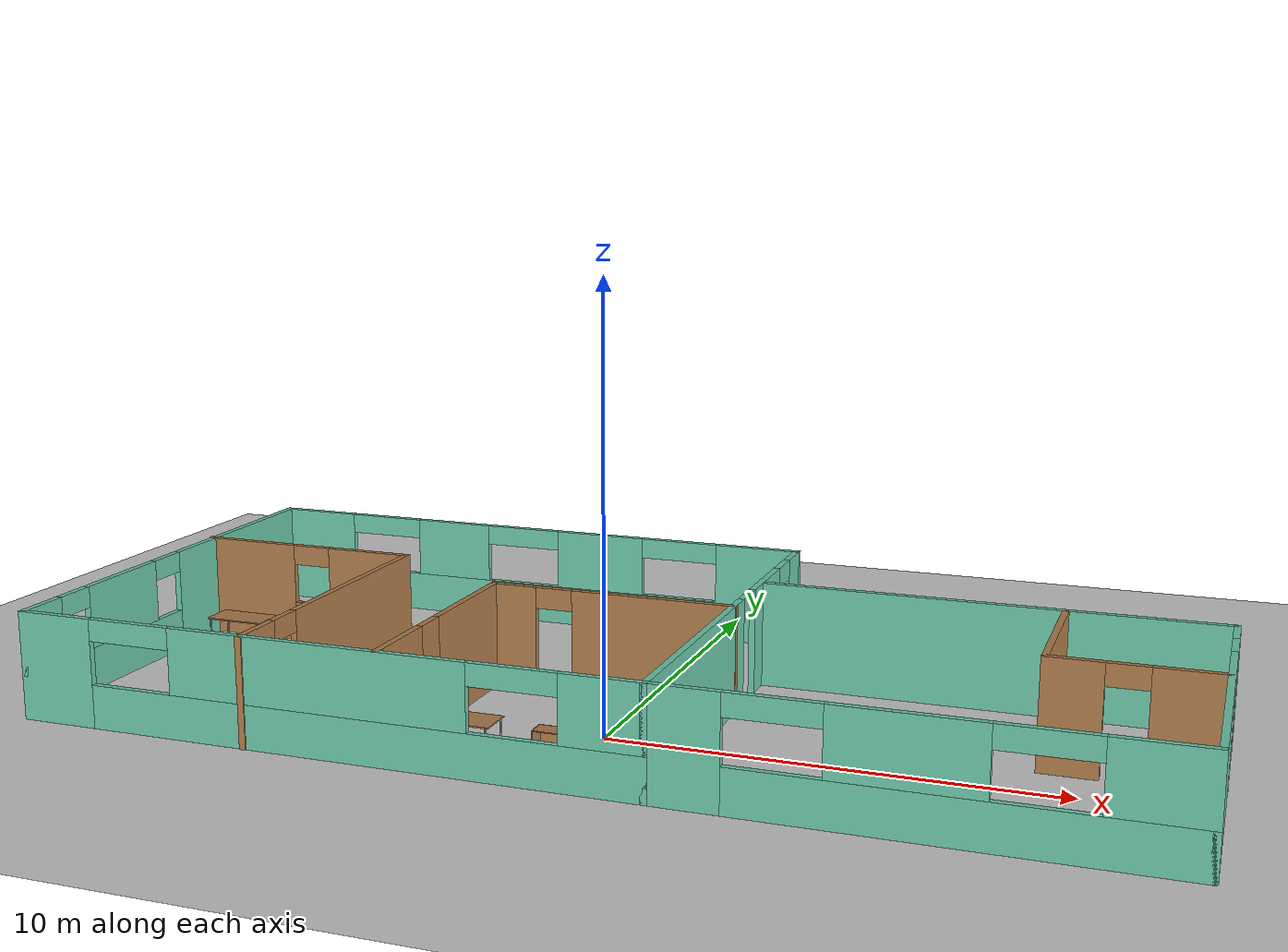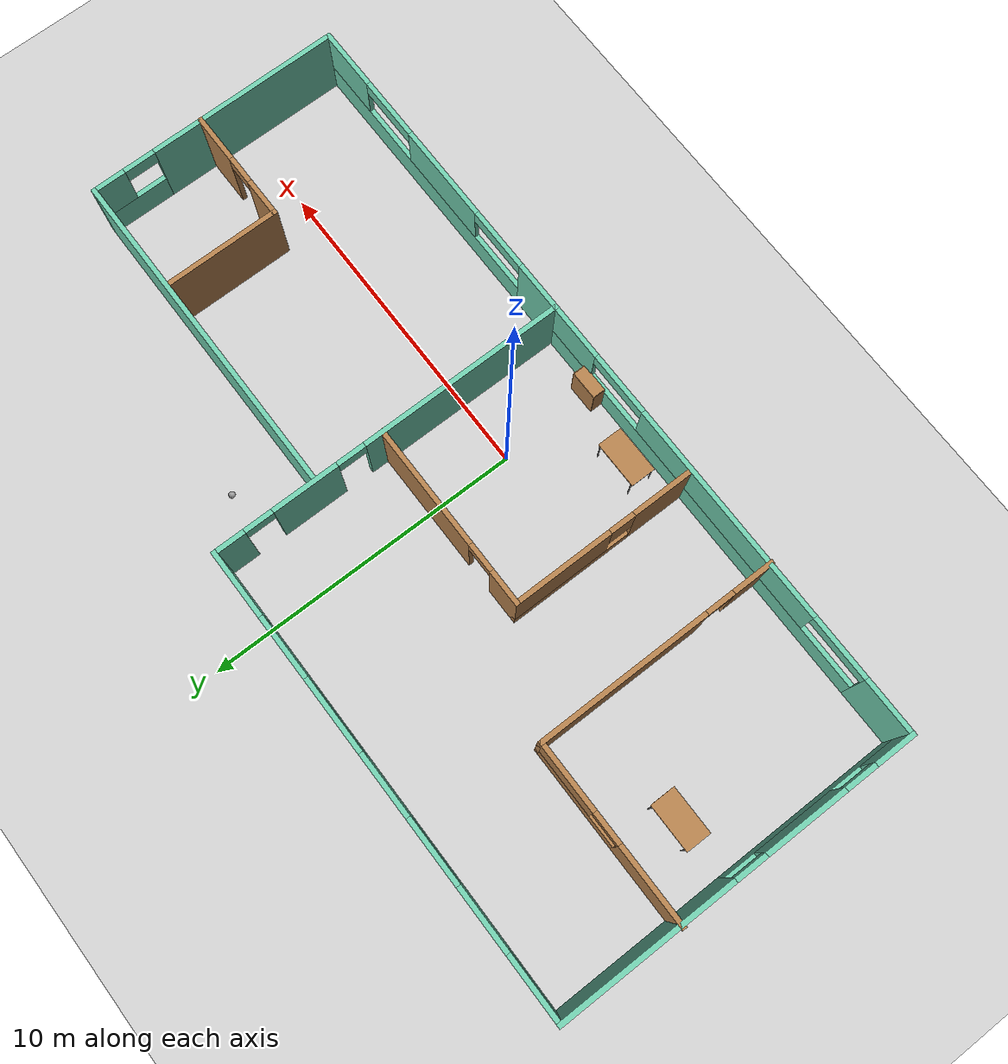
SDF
<sdf version="1.6">
 <world name="default">
  <model name="ground_plane">
   <static>1</static>
   <link name="link">
    <collision name="collision">
     <geometry><plane><normal>0 0 1</normal><size>100 100</size></plane></geometry>
     <surface><friction><ode><mu>100</mu><mu2>50</mu2></ode></friction></surface>
    </collision>
    <visual name="visual">
     <cast_shadows>0</cast_shadows>
     <geometry><plane><normal>0 0 1</normal><size>100 100</size></plane></geometry>
     <material>
      <script><uri>file://media/materials/scripts/gazebo.material</uri><name>Gazebo/Grey</name></script>
     </material>
    </visual>
   </link>
  </model>
  <model name="Building">
   <pose>0.0487 2.43488 0 0 -0 0</pose>
   <link name="Wall_16">
    <pose>-3.82517 -2.7038 0 0 -0 1.5708</pose>
    <visual name="Wall_16_Visual_0">
     <pose>-1.99039 0 1.25 0 -0 0</pose>
     <geometry><box><size>2.01921 0.15 2.5</size></box></geometry>
     <material>
      <script><uri>file://media/materials/scripts/gazebo.material</uri><name>Gazebo/Wood</name></script>
      <ambient>1 1 1 1</ambient>
     </material>
     <meta><layer>0</layer></meta>
    </visual>
    <collision name="Wall_16_Collision_0">
     <geometry><box><size>2.01921 0.15 2.5</size></box></geometry>
     <pose>-1.99039 0 1.25 0 -0 0</pose>
    </collision>
    <visual name="Wall_16_Visual_1">
     <pose>1.00961 0 0.25 0 -0 0</pose>
     <geometry><box><size>3.98079 0.15 0.5</size></box></geometry>
     <material>
      <script><uri>file://media/materials/scripts/gazebo.material</uri><name>Gazebo/Wood</name></script>
      <ambient>1 1 1 1</ambient>
     </material>
     <meta><layer>0</layer></meta>
    </visual>
    <collision name="Wall_16_Collision_1">
     <geometry><box><size>3.98079 0.15 0.5</size></box></geometry>
     <pose>1.00961 0 0.25 0 -0 0</pose>
    </collision>
    <visual name="Wall_16_Visual_2">
     <pose>1.4096 0 1.5 0 -0 0</pose>
     <geometry><box><size>3.18079 0.15 2</size></box></geometry>
     <material>
      <script><uri>file://media/materials/scripts/gazebo.material</uri><name>Gazebo/Wood</name></script>
      <ambient>1 1 1 1</ambient>
     </material>
     <meta><layer>0</layer></meta>
    </visual>
    <collision name="Wall_16_Collision_2">
     <geometry><box><size>3.18079 0.15 2</size></box></geometry>
     <pose>1.4096 0 1.5 0 -0 0</pose>
    </collision>
    <visual name="Wall_16_Visual_3">
     <pose>-0.580791 0 1.9 0 -0 0</pose>
     <geometry><box><size>0.8 0.15 1.2</size></box></geometry>
     <material>
      <script><uri>file://media/materials/scripts/gazebo.material</uri><name>Gazebo/Wood</name></script>
      <ambient>1 1 1 1</ambient>
     </material>
     <meta><layer>0</layer></meta>
    </visual>
    <collision name="Wall_16_Collision_3">
     <geometry><box><size>0.8 0.15 1.2</size></box></geometry>
     <pose>-0.580791 0 1.9 0 -0 0</pose>
    </collision>
   </link>
   <link name="Wall_17">
    <pose>-0.900166 0.221202 0 0 -0 0</pose>
    <visual name="Wall_17_Visual_0">
     <pose>-2.42762 0 1.25 0 -0 0</pose>
     <geometry><box><size>1.14476 0.15 2.5</size></box></geometry>
     <material>
      <script><uri>file://media/materials/scripts/gazebo.material</uri><name>Gazebo/Wood</name></script>
      <ambient>1 1 1 1</ambient>
     </material>
     <meta><layer>0</layer></meta>
    </visual>
    <collision name="Wall_17_Collision_0">
     <geometry><box><size>1.14476 0.15 2.5</size></box></geometry>
     <pose>-2.42762 0 1.25 0 -0 0</pose>
    </collision>
    <visual name="Wall_17_Visual_1">
     <pose>1.02238 0 1.25 0 -0 0</pose>
     <geometry><box><size>3.95524 0.15 2.5</size></box></geometry>
     <material>
      <script><uri>file://media/materials/scripts/gazebo.material</uri><name>Gazebo/Wood</name></script>
      <ambient>1 1 1 1</ambient>
     </material>
     <meta><layer>0</layer></meta>
    </visual>
    <collision name="Wall_17_Collision_1">
     <geometry><box><size>3.95524 0.15 2.5</size></box></geometry>
     <pose>1.02238 0 1.25 0 -0 0</pose>
    </collision>
    <visual name="Wall_17_Visual_2">
     <pose>-1.40524 0 2.25 0 -0 0</pose>
     <geometry><box><size>0.9 0.15 0.5</size></box></geometry>
     <material>
      <script><uri>file://media/materials/scripts/gazebo.material</uri><name>Gazebo/Wood</name></script>
      <ambient>1 1 1 1</ambient>
     </material>
     <meta><layer>0</layer></meta>
    </visual>
    <collision name="Wall_17_Collision_2">
     <geometry><box><size>0.9 0.15 0.5</size></box></geometry>
     <pose>-1.40524 0 2.25 0 -0 0</pose>
    </collision>
   </link>
   <link name="Wall_23">
    <pose>7.32067 -5.66058 0 0 -0 0</pose>
    <visual name="Wall_23_Visual_0">
     <pose>-4.56131 0 1.25 0 -0 0</pose>
     <geometry><box><size>1.62738 0.15 2.5</size></box></geometry>
     <material>
      <script><uri>file://media/materials/scripts/gazebo.material</uri><name>Gazebo/Grey</name></script>
      <ambient>0.435294 0.796078 0.67451 1</ambient>
     </material>
     <meta><layer>0</layer></meta>
    </visual>
    <collision name="Wall_23_Collision_0">
     <geometry><box><size>1.62738 0.15 2.5</size></box></geometry>
     <pose>-4.56131 0 1.25 0 -0 0</pose>
    </collision>
    <visual name="Wall_23_Visual_1">
     <pose>0.81369 0 0.5 0 -0 0</pose>
     <geometry><box><size>9.12262 0.15 1</size></box></geometry>
     <material>
      <script><uri>file://media/materials/scripts/gazebo.material</uri><name>Gazebo/Grey</name></script>
      <ambient>0.435294 0.796078 0.67451 1</ambient>
     </material>
     <meta><layer>0</layer></meta>
    </visual>
    <collision name="Wall_23_Collision_1">
     <geometry><box><size>9.12262 0.15 1</size></box></geometry>
     <pose>0.81369 0 0.5 0 -0 0</pose>
    </collision>
    <visual name="Wall_23_Visual_2">
     <pose>-0.193336 0 1.75 0 -0 0</pose>
     <geometry><box><size>3.10857 0.15 1.5</size></box></geometry>
     <material>
      <script><uri>file://media/materials/scripts/gazebo.material</uri><name>Gazebo/Grey</name></script>
      <ambient>0.435294 0.796078 0.67451 1</ambient>
     </material>
     <meta><layer>0</layer></meta>
    </visual>
    <collision name="Wall_23_Collision_2">
     <geometry><box><size>3.10857 0.15 1.5</size></box></geometry>
     <pose>-0.193336 0 1.75 0 -0 0</pose>
    </collision>
    <visual name="Wall_23_Visual_3">
     <pose>4.36797 0 1.75 0 -0 0</pose>
     <geometry><box><size>2.01405 0.15 1.5</size></box></geometry>
     <material>
      <script><uri>file://media/materials/scripts/gazebo.material</uri><name>Gazebo/Grey</name></script>
      <ambient>0.435294 0.796078 0.67451 1</ambient>
     </material>
     <meta><layer>0</layer></meta>
    </visual>
    <collision name="Wall_23_Collision_3">
     <geometry><box><size>2.01405 0.15 1.5</size></box></geometry>
     <pose>4.36797 0 1.75 0 -0 0</pose>
    </collision>
    <visual name="Wall_23_Visual_4">
     <pose>-2.74762 0 2.25 0 -0 0</pose>
     <geometry><box><size>2 0.15 0.5</size></box></geometry>
     <material>
      <script><uri>file://media/materials/scripts/gazebo.material</uri><name>Gazebo/Grey</name></script>
      <ambient>0.435294 0.796078 0.67451 1</ambient>
     </material>
     <meta><layer>0</layer></meta>
    </visual>
    <collision name="Wall_23_Collision_4">
     <geometry><box><size>2 0.15 0.5</size></box></geometry>
     <pose>-2.74762 0 2.25 0 -0 0</pose>
    </collision>
    <visual name="Wall_23_Visual_5">
     <pose>2.36095 0 2.25 0 -0 0</pose>
     <geometry><box><size>2 0.15 0.5</size></box></geometry>
     <material>
      <script><uri>file://media/materials/scripts/gazebo.material</uri><name>Gazebo/Grey</name></script>
      <ambient>0.435294 0.796078 0.67451 1</ambient>
     </material>
     <meta><layer>0</layer></meta>
    </visual>
    <collision name="Wall_23_Collision_5">
     <geometry><box><size>2 0.15 0.5</size></box></geometry>
     <pose>2.36095 0 2.25 0 -0 0</pose>
    </collision>
   </link>
   <link name="Wall_24">
    <pose>12.6207 -1.61058 0 0 -0 1.5708</pose>
    <visual name="Wall_24_Visual_0">
     <pose>-1.03878 0 1.25 0 -0 0</pose>
     <geometry><box><size>6.17244 0.15 2.5</size></box></geometry>
     <material>
      <script><uri>file://media/materials/scripts/gazebo.material</uri><name>Gazebo/Grey</name></script>
      <ambient>0.435294 0.796078 0.67451 1</ambient>
     </material>
     <meta><layer>0</layer></meta>
    </visual>
    <collision name="Wall_24_Collision_0">
     <geometry><box><size>6.17244 0.15 2.5</size></box></geometry>
     <pose>-1.03878 0 1.25 0 -0 0</pose>
    </collision>
    <visual name="Wall_24_Visual_1">
     <pose>3.08622 0 0.5 0 -0 0</pose>
     <geometry><box><size>2.07756 0.15 1</size></box></geometry>
     <material>
      <script><uri>file://media/materials/scripts/gazebo.material</uri><name>Gazebo/Grey</name></script>
      <ambient>0.435294 0.796078 0.67451 1</ambient>
     </material>
     <meta><layer>0</layer></meta>
    </visual>
    <collision name="Wall_24_Collision_1">
     <geometry><box><size>2.07756 0.15 1</size></box></geometry>
     <pose>3.08622 0 0.5 0 -0 0</pose>
    </collision>
    <visual name="Wall_24_Visual_2">
     <pose>3.58622 0 1.75 0 -0 0</pose>
     <geometry><box><size>1.07756 0.15 1.5</size></box></geometry>
     <material>
      <script><uri>file://media/materials/scripts/gazebo.material</uri><name>Gazebo/Grey</name></script>
      <ambient>0.435294 0.796078 0.67451 1</ambient>
     </material>
     <meta><layer>0</layer></meta>
    </visual>
    <collision name="Wall_24_Collision_2">
     <geometry><box><size>1.07756 0.15 1.5</size></box></geometry>
     <pose>3.58622 0 1.75 0 -0 0</pose>
    </collision>
    <visual name="Wall_24_Visual_3">
     <pose>2.54744 0 2.25 0 -0 0</pose>
     <geometry><box><size>1 0.15 0.5</size></box></geometry>
     <material>
      <script><uri>file://media/materials/scripts/gazebo.material</uri><name>Gazebo/Grey</name></script>
      <ambient>0.435294 0.796078 0.67451 1</ambient>
     </material>
     <meta><layer>0</layer></meta>
    </visual>
    <collision name="Wall_24_Collision_3">
     <geometry><box><size>1 0.15 0.5</size></box></geometry>
     <pose>2.54744 0 2.25 0 -0 0</pose>
    </collision>
   </link>
   <link name="Wall_25">
    <collision name="Wall_25_Collision">
     <geometry><box><size>10.75 0.15 2.5</size></box></geometry>
     <pose>0 0 1.25 0 -0 0</pose>
    </collision>
    <visual name="Wall_25_Visual">
     <pose>0 0 1.25 0 -0 0</pose>
     <geometry><box><size>10.75 0.15 2.5</size></box></geometry>
     <material>
      <script><uri>file://media/materials/scripts/gazebo.material</uri><name>Gazebo/Grey</name></script>
      <ambient>0.435294 0.796078 0.67451 1</ambient>
     </material>
     <meta><layer>0</layer></meta>
    </visual>
    <pose>7.32067 2.43942 0 0 -0 3.14159</pose>
   </link>
   <link name="Wall_27">
    <collision name="Wall_27_Collision">
     <geometry><box><size>3.75 0.15 2.5</size></box></geometry>
     <pose>0 0 1.25 0 -0 0</pose>
    </collision>
    <visual name="Wall_27_Visual">
     <pose>0 0 1.25 0 -0 0</pose>
     <geometry><box><size>3.75 0.15 2.5</size></box></geometry>
     <material>
      <script><uri>file://media/materials/scripts/gazebo.material</uri><name>Gazebo/Wood</name></script>
      <ambient>1 1 1 1</ambient>
     </material>
     <meta><layer>0</layer></meta>
    </visual>
    <pose>9.02628 0.615984 0 0 0 -1.5708</pose>
   </link>
   <link name="Wall_28">
    <pose>10.8263 -1.18402 0 0 -0 0</pose>
    <visual name="Wall_28_Visual_0">
     <pose>-1.23789 0 1.25 0 -0 0</pose>
     <geometry><box><size>1.27421 0.15 2.5</size></box></geometry>
     <material>
      <script><uri>file://media/materials/scripts/gazebo.material</uri><name>Gazebo/Wood</name></script>
      <ambient>1 1 1 1</ambient>
     </material>
     <meta><layer>0</layer></meta>
    </visual>
    <collision name="Wall_28_Collision_0">
     <geometry><box><size>1.27421 0.15 2.5</size></box></geometry>
     <pose>-1.23789 0 1.25 0 -0 0</pose>
    </collision>
    <visual name="Wall_28_Visual_1">
     <pose>1.08711 0 1.25 0 -0 0</pose>
     <geometry><box><size>1.57579 0.15 2.5</size></box></geometry>
     <material>
      <script><uri>file://media/materials/scripts/gazebo.material</uri><name>Gazebo/Wood</name></script>
      <ambient>1 1 1 1</ambient>
     </material>
     <meta><layer>0</layer></meta>
    </visual>
    <collision name="Wall_28_Collision_1">
     <geometry><box><size>1.57579 0.15 2.5</size></box></geometry>
     <pose>1.08711 0 1.25 0 -0 0</pose>
    </collision>
    <visual name="Wall_28_Visual_2">
     <pose>-0.150787 0 2.25 0 -0 0</pose>
     <geometry><box><size>0.9 0.15 0.5</size></box></geometry>
     <material>
      <script><uri>file://media/materials/scripts/gazebo.material</uri><name>Gazebo/Wood</name></script>
      <ambient>1 1 1 1</ambient>
     </material>
     <meta><layer>0</layer></meta>
    </visual>
    <collision name="Wall_28_Collision_2">
     <geometry><box><size>0.9 0.15 0.5</size></box></geometry>
     <pose>-0.150787 0 2.25 0 -0 0</pose>
    </collision>
   </link>
   <link name="Wall_30">
    <pose>-9.82628 1.91058 0 0 -0 0</pose>
    <visual name="Wall_30_Visual_0">
     <pose>-1.61536 0 1.25 0 -0 0</pose>
     <geometry><box><size>2.51928 0.15 2.5</size></box></geometry>
     <material>
      <script><uri>file://media/materials/scripts/gazebo.material</uri><name>Gazebo/Wood</name></script>
      <ambient>1 1 1 1</ambient>
     </material>
     <meta><layer>0</layer></meta>
    </visual>
    <collision name="Wall_30_Collision_0">
     <geometry><box><size>2.51928 0.15 2.5</size></box></geometry>
     <pose>-1.61536 0 1.25 0 -0 0</pose>
    </collision>
    <visual name="Wall_30_Visual_1">
     <pose>1.25964 0 0.5 0 -0 0</pose>
     <geometry><box><size>3.23072 0.15 1</size></box></geometry>
     <material>
      <script><uri>file://media/materials/scripts/gazebo.material</uri><name>Gazebo/Wood</name></script>
      <ambient>1 1 1 1</ambient>
     </material>
     <meta><layer>0</layer></meta>
    </visual>
    <collision name="Wall_30_Collision_1">
     <geometry><box><size>3.23072 0.15 1</size></box></geometry>
     <pose>1.25964 0 0.5 0 -0 0</pose>
    </collision>
    <visual name="Wall_30_Visual_2">
     <pose>1.75964 0 1.75 0 -0 0</pose>
     <geometry><box><size>2.23072 0.15 1.5</size></box></geometry>
     <material>
      <script><uri>file://media/materials/scripts/gazebo.material</uri><name>Gazebo/Wood</name></script>
      <ambient>1 1 1 1</ambient>
     </material>
     <meta><layer>0</layer></meta>
    </visual>
    <collision name="Wall_30_Collision_2">
     <geometry><box><size>2.23072 0.15 1.5</size></box></geometry>
     <pose>1.75964 0 1.75 0 -0 0</pose>
    </collision>
    <visual name="Wall_30_Visual_3">
     <pose>0.144283 0 2.25 0 -0 0</pose>
     <geometry><box><size>1 0.15 0.5</size></box></geometry>
     <material>
      <script><uri>file://media/materials/scripts/gazebo.material</uri><name>Gazebo/Wood</name></script>
      <ambient>1 1 1 1</ambient>
     </material>
     <meta><layer>0</layer></meta>
    </visual>
    <collision name="Wall_30_Collision_3">
     <geometry><box><size>1 0.15 0.5</size></box></geometry>
     <pose>0.144283 0 2.25 0 -0 0</pose>
    </collision>
   </link>
   <link name="Wall_33">
    <pose>-7.02628 -1.88942 0 0 0 -1.5708</pose>
    <visual name="Wall_33_Visual_0">
     <pose>-1.12318 0 1.25 0 -0 0</pose>
     <geometry><box><size>5.50364 0.15 2.5</size></box></geometry>
     <material>
      <script><uri>file://media/materials/scripts/gazebo.material</uri><name>Gazebo/Wood</name></script>
      <ambient>1 1 1 1</ambient>
     </material>
     <meta><layer>0</layer></meta>
    </visual>
    <collision name="Wall_33_Collision_0">
     <geometry><box><size>5.50364 0.15 2.5</size></box></geometry>
     <pose>-1.12318 0 1.25 0 -0 0</pose>
    </collision>
    <visual name="Wall_33_Visual_1">
     <pose>3.20182 0 1.25 0 -0 0</pose>
     <geometry><box><size>1.34636 0.15 2.5</size></box></geometry>
     <material>
      <script><uri>file://media/materials/scripts/gazebo.material</uri><name>Gazebo/Wood</name></script>
      <ambient>1 1 1 1</ambient>
     </material>
     <meta><layer>0</layer></meta>
    </visual>
    <collision name="Wall_33_Collision_1">
     <geometry><box><size>1.34636 0.15 2.5</size></box></geometry>
     <pose>3.20182 0 1.25 0 -0 0</pose>
    </collision>
    <visual name="Wall_33_Visual_2">
     <pose>2.07864 0 2.25 0 -0 0</pose>
     <geometry><box><size>0.9 0.15 0.5</size></box></geometry>
     <material>
      <script><uri>file://media/materials/scripts/gazebo.material</uri><name>Gazebo/Wood</name></script>
      <ambient>1 1 1 1</ambient>
     </material>
     <meta><layer>0</layer></meta>
    </visual>
    <collision name="Wall_33_Collision_2">
     <geometry><box><size>0.9 0.15 0.5</size></box></geometry>
     <pose>2.07864 0 2.25 0 -0 0</pose>
    </collision>
   </link>
   <link name="Wall_4">
    <pose>-12.5793 0.01442 0 0 0 -1.5708</pose>
    <visual name="Wall_4_Visual_0">
     <pose>-2.95936 0 1.25 0 -0 0</pose>
     <geometry><box><size>5.58129 0.15 2.5</size></box></geometry>
     <material>
      <script><uri>file://media/materials/scripts/gazebo.material</uri><name>Gazebo/Grey</name></script>
      <ambient>0.435294 0.796078 0.67451 1</ambient>
     </material>
     <meta><layer>0</layer></meta>
    </visual>
    <collision name="Wall_4_Collision_0">
     <geometry><box><size>5.58129 0.15 2.5</size></box></geometry>
     <pose>-2.95936 0 1.25 0 -0 0</pose>
    </collision>
    <visual name="Wall_4_Visual_1">
     <pose>2.79064 0 0.5 0 -0 0</pose>
     <geometry><box><size>5.91871 0.15 1</size></box></geometry>
     <material>
      <script><uri>file://media/materials/scripts/gazebo.material</uri><name>Gazebo/Grey</name></script>
      <ambient>0.435294 0.796078 0.67451 1</ambient>
     </material>
     <meta><layer>0</layer></meta>
    </visual>
    <collision name="Wall_4_Collision_1">
     <geometry><box><size>5.91871 0.15 1</size></box></geometry>
     <pose>2.79064 0 0.5 0 -0 0</pose>
    </collision>
    <visual name="Wall_4_Visual_2">
     <pose>2.13634 0 1.75 0 -0 0</pose>
     <geometry><box><size>2.61011 0.15 1.5</size></box></geometry>
     <material>
      <script><uri>file://media/materials/scripts/gazebo.material</uri><name>Gazebo/Grey</name></script>
      <ambient>0.435294 0.796078 0.67451 1</ambient>
     </material>
     <meta><layer>0</layer></meta>
    </visual>
    <collision name="Wall_4_Collision_2">
     <geometry><box><size>2.61011 0.15 1.5</size></box></geometry>
     <pose>2.13634 0 1.75 0 -0 0</pose>
    </collision>
    <visual name="Wall_4_Visual_3">
     <pose>5.0957 0 1.75 0 -0 0</pose>
     <geometry><box><size>1.3086 0.15 1.5</size></box></geometry>
     <material>
      <script><uri>file://media/materials/scripts/gazebo.material</uri><name>Gazebo/Grey</name></script>
      <ambient>0.435294 0.796078 0.67451 1</ambient>
     </material>
     <meta><layer>0</layer></meta>
    </visual>
    <collision name="Wall_4_Collision_3">
     <geometry><box><size>1.3086 0.15 1.5</size></box></geometry>
     <pose>5.0957 0 1.75 0 -0 0</pose>
    </collision>
    <visual name="Wall_4_Visual_4">
     <pose>0.331288 0 2.25 0 -0 0</pose>
     <geometry><box><size>1 0.15 0.5</size></box></geometry>
     <material>
      <script><uri>file://media/materials/scripts/gazebo.material</uri><name>Gazebo/Grey</name></script>
      <ambient>0.435294 0.796078 0.67451 1</ambient>
     </material>
     <meta><layer>0</layer></meta>
    </visual>
    <collision name="Wall_4_Collision_4">
     <geometry><box><size>1 0.15 0.5</size></box></geometry>
     <pose>0.331288 0 2.25 0 -0 0</pose>
    </collision>
    <visual name="Wall_4_Visual_5">
     <pose>3.9414 0 2.25 0 -0 0</pose>
     <geometry><box><size>1 0.15 0.5</size></box></geometry>
     <material>
      <script><uri>file://media/materials/scripts/gazebo.material</uri><name>Gazebo/Grey</name></script>
      <ambient>0.435294 0.796078 0.67451 1</ambient>
     </material>
     <meta><layer>0</layer></meta>
    </visual>
    <collision name="Wall_4_Collision_5">
     <geometry><box><size>1 0.15 0.5</size></box></geometry>
     <pose>3.9414 0 2.25 0 -0 0</pose>
    </collision>
   </link>
   <link name="Wall_5">
    <pose>-5.27933 -5.66058 0 0 -0 0</pose>
    <visual name="Wall_5_Visual_0">
     <pose>-6.45001 0 1.25 0 -0 0</pose>
     <geometry><box><size>1.84997 0.15 2.5</size></box></geometry>
     <material>
      <script><uri>file://media/materials/scripts/gazebo.material</uri><name>Gazebo/Grey</name></script>
      <ambient>0.435294 0.796078 0.67451 1</ambient>
     </material>
     <meta><layer>0</layer></meta>
    </visual>
    <collision name="Wall_5_Collision_0">
     <geometry><box><size>1.84997 0.15 2.5</size></box></geometry>
     <pose>-6.45001 0 1.25 0 -0 0</pose>
    </collision>
    <visual name="Wall_5_Visual_1">
     <pose>0.924986 0 0.5 0 -0 0</pose>
     <geometry><box><size>12.9 0.15 1</size></box></geometry>
     <material>
      <script><uri>file://media/materials/scripts/gazebo.material</uri><name>Gazebo/Grey</name></script>
      <ambient>0.435294 0.796078 0.67451 1</ambient>
     </material>
     <meta><layer>0</layer></meta>
    </visual>
    <collision name="Wall_5_Collision_1">
     <geometry><box><size>12.9 0.15 1</size></box></geometry>
     <pose>0.924986 0 0.5 0 -0 0</pose>
    </collision>
    <visual name="Wall_5_Visual_2">
     <pose>-0.012969 0 1.75 0 -0 0</pose>
     <geometry><box><size>7.02412 0.15 1.5</size></box></geometry>
     <material>
      <script><uri>file://media/materials/scripts/gazebo.material</uri><name>Gazebo/Grey</name></script>
      <ambient>0.435294 0.796078 0.67451 1</ambient>
     </material>
     <meta><layer>0</layer></meta>
    </visual>
    <collision name="Wall_5_Collision_2">
     <geometry><box><size>7.02412 0.15 1.5</size></box></geometry>
     <pose>-0.012969 0 1.75 0 -0 0</pose>
    </collision>
    <visual name="Wall_5_Visual_3">
     <pose>6.43705 0 1.75 0 -0 0</pose>
     <geometry><box><size>1.87591 0.15 1.5</size></box></geometry>
     <material>
      <script><uri>file://media/materials/scripts/gazebo.material</uri><name>Gazebo/Grey</name></script>
      <ambient>0.435294 0.796078 0.67451 1</ambient>
     </material>
     <meta><layer>0</layer></meta>
    </visual>
    <collision name="Wall_5_Collision_3">
     <geometry><box><size>1.87591 0.15 1.5</size></box></geometry>
     <pose>6.43705 0 1.75 0 -0 0</pose>
    </collision>
    <visual name="Wall_5_Visual_4">
     <pose>-4.52503 0 2.25 0 -0 0</pose>
     <geometry><box><size>2 0.15 0.5</size></box></geometry>
     <material>
      <script><uri>file://media/materials/scripts/gazebo.material</uri><name>Gazebo/Grey</name></script>
      <ambient>0.435294 0.796078 0.67451 1</ambient>
     </material>
     <meta><layer>0</layer></meta>
    </visual>
    <collision name="Wall_5_Collision_4">
     <geometry><box><size>2 0.15 0.5</size></box></geometry>
     <pose>-4.52503 0 2.25 0 -0 0</pose>
    </collision>
    <visual name="Wall_5_Visual_5">
     <pose>4.49909 0 2.25 0 -0 0</pose>
     <geometry><box><size>2 0.15 0.5</size></box></geometry>
     <material>
      <script><uri>file://media/materials/scripts/gazebo.material</uri><name>Gazebo/Grey</name></script>
      <ambient>0.435294 0.796078 0.67451 1</ambient>
     </material>
     <meta><layer>0</layer></meta>
    </visual>
    <collision name="Wall_5_Collision_5">
     <geometry><box><size>2 0.15 0.5</size></box></geometry>
     <pose>4.49909 0 2.25 0 -0 0</pose>
    </collision>
   </link>
   <link name="Wall_6">
    <pose>2.02067 0.01442 0 0 -0 1.5708</pose>
    <visual name="Wall_6_Visual_0">
     <pose>-2.47112 0 1.25 0 -0 0</pose>
     <geometry><box><size>6.55776 0.15 2.5</size></box></geometry>
     <material>
      <script><uri>file://media/materials/scripts/gazebo.material</uri><name>Gazebo/Grey</name></script>
      <ambient>0.435294 0.796078 0.67451 1</ambient>
     </material>
     <meta><layer>0</layer></meta>
    </visual>
    <collision name="Wall_6_Collision_0">
     <geometry><box><size>6.55776 0.15 2.5</size></box></geometry>
     <pose>-2.47112 0 1.25 0 -0 0</pose>
    </collision>
    <visual name="Wall_6_Visual_1">
     <pose>2.76067 0 1.25 0 -0 0</pose>
     <geometry><box><size>2.10582 0.15 2.5</size></box></geometry>
     <material>
      <script><uri>file://media/materials/scripts/gazebo.material</uri><name>Gazebo/Grey</name></script>
      <ambient>0.435294 0.796078 0.67451 1</ambient>
     </material>
     <meta><layer>0</layer></meta>
    </visual>
    <collision name="Wall_6_Collision_1">
     <geometry><box><size>2.10582 0.15 2.5</size></box></geometry>
     <pose>2.76067 0 1.25 0 -0 0</pose>
    </collision>
    <visual name="Wall_6_Visual_2">
     <pose>5.23179 0 1.25 0 -0 0</pose>
     <geometry><box><size>1.03642 0.15 2.5</size></box></geometry>
     <material>
      <script><uri>file://media/materials/scripts/gazebo.material</uri><name>Gazebo/Grey</name></script>
      <ambient>0.435294 0.796078 0.67451 1</ambient>
     </material>
     <meta><layer>0</layer></meta>
    </visual>
    <collision name="Wall_6_Collision_2">
     <geometry><box><size>1.03642 0.15 2.5</size></box></geometry>
     <pose>5.23179 0 1.25 0 -0 0</pose>
    </collision>
    <visual name="Wall_6_Visual_3">
     <pose>1.25776 0 2.25 0 -0 0</pose>
     <geometry><box><size>0.9 0.15 0.5</size></box></geometry>
     <material>
      <script><uri>file://media/materials/scripts/gazebo.material</uri><name>Gazebo/Grey</name></script>
      <ambient>0.435294 0.796078 0.67451 1</ambient>
     </material>
     <meta><layer>0</layer></meta>
    </visual>
    <collision name="Wall_6_Collision_3">
     <geometry><box><size>0.9 0.15 0.5</size></box></geometry>
     <pose>1.25776 0 2.25 0 -0 0</pose>
    </collision>
    <visual name="Wall_6_Visual_4">
     <pose>4.26358 0 2.25 0 -0 0</pose>
     <geometry><box><size>0.9 0.15 0.5</size></box></geometry>
     <material>
      <script><uri>file://media/materials/scripts/gazebo.material</uri><name>Gazebo/Grey</name></script>
      <ambient>0.435294 0.796078 0.67451 1</ambient>
     </material>
     <meta><layer>0</layer></meta>
    </visual>
    <collision name="Wall_6_Collision_4">
     <geometry><box><size>0.9 0.15 0.5</size></box></geometry>
     <pose>4.26358 0 2.25 0 -0 0</pose>
    </collision>
   </link>
   <link name="Wall_7">
    <pose>-5.27933 5.68942 0 0 -0 3.14159</pose>
    <visual name="Wall_7_Visual_0">
     <pose>-6.28409 0 1.25 0 -0 0</pose>
     <geometry><box><size>2.18181 0.15 2.5</size></box></geometry>
     <material>
      <script><uri>file://media/materials/scripts/gazebo.material</uri><name>Gazebo/Grey</name></script>
      <ambient>0.435294 0.796078 0.67451 1</ambient>
     </material>
     <meta><layer>0</layer></meta>
    </visual>
    <collision name="Wall_7_Collision_0">
     <geometry><box><size>2.18181 0.15 2.5</size></box></geometry>
     <pose>-6.28409 0 1.25 0 -0 0</pose>
    </collision>
    <visual name="Wall_7_Visual_1">
     <pose>1.09091 0 0.5 0 -0 0</pose>
     <geometry><box><size>12.5682 0.15 1</size></box></geometry>
     <material>
      <script><uri>file://media/materials/scripts/gazebo.material</uri><name>Gazebo/Grey</name></script>
      <ambient>0.435294 0.796078 0.67451 1</ambient>
     </material>
     <meta><layer>0</layer></meta>
    </visual>
    <collision name="Wall_7_Collision_1">
     <geometry><box><size>12.5682 0.15 1</size></box></geometry>
     <pose>1.09091 0 0.5 0 -0 0</pose>
    </collision>
    <visual name="Wall_7_Visual_2">
     <pose>-2.00599 0 1.75 0 -0 0</pose>
     <geometry><box><size>2.3744 0.15 1.5</size></box></geometry>
     <material>
      <script><uri>file://media/materials/scripts/gazebo.material</uri><name>Gazebo/Grey</name></script>
      <ambient>0.435294 0.796078 0.67451 1</ambient>
     </material>
     <meta><layer>0</layer></meta>
    </visual>
    <collision name="Wall_7_Collision_2">
     <geometry><box><size>2.3744 0.15 1.5</size></box></geometry>
     <pose>-2.00599 0 1.75 0 -0 0</pose>
    </collision>
    <visual name="Wall_7_Visual_3">
     <pose>2.21547 0 1.75 0 -0 0</pose>
     <geometry><box><size>2.0685 0.15 1.5</size></box></geometry>
     <material>
      <script><uri>file://media/materials/scripts/gazebo.material</uri><name>Gazebo/Grey</name></script>
      <ambient>0.435294 0.796078 0.67451 1</ambient>
     </material>
     <meta><layer>0</layer></meta>
    </visual>
    <collision name="Wall_7_Collision_3">
     <geometry><box><size>2.0685 0.15 1.5</size></box></geometry>
     <pose>2.21547 0 1.75 0 -0 0</pose>
    </collision>
    <visual name="Wall_7_Visual_4">
     <pose>6.31236 0 1.75 0 -0 0</pose>
     <geometry><box><size>2.12528 0.15 1.5</size></box></geometry>
     <material>
      <script><uri>file://media/materials/scripts/gazebo.material</uri><name>Gazebo/Grey</name></script>
      <ambient>0.435294 0.796078 0.67451 1</ambient>
     </material>
     <meta><layer>0</layer></meta>
    </visual>
    <collision name="Wall_7_Collision_4">
     <geometry><box><size>2.12528 0.15 1.5</size></box></geometry>
     <pose>6.31236 0 1.75 0 -0 0</pose>
    </collision>
    <visual name="Wall_7_Visual_5">
     <pose>-4.19319 0 2.25 0 -0 0</pose>
     <geometry><box><size>2 0.15 0.5</size></box></geometry>
     <material>
      <script><uri>file://media/materials/scripts/gazebo.material</uri><name>Gazebo/Grey</name></script>
      <ambient>0.435294 0.796078 0.67451 1</ambient>
     </material>
     <meta><layer>0</layer></meta>
    </visual>
    <collision name="Wall_7_Collision_5">
     <geometry><box><size>2 0.15 0.5</size></box></geometry>
     <pose>-4.19319 0 2.25 0 -0 0</pose>
    </collision>
    <visual name="Wall_7_Visual_6">
     <pose>0.181215 0 2.25 0 -0 0</pose>
     <geometry><box><size>2 0.15 0.5</size></box></geometry>
     <material>
      <script><uri>file://media/materials/scripts/gazebo.material</uri><name>Gazebo/Grey</name></script>
      <ambient>0.435294 0.796078 0.67451 1</ambient>
     </material>
     <meta><layer>0</layer></meta>
    </visual>
    <collision name="Wall_7_Collision_6">
     <geometry><box><size>2 0.15 0.5</size></box></geometry>
     <pose>0.181215 0 2.25 0 -0 0</pose>
    </collision>
    <visual name="Wall_7_Visual_7">
     <pose>4.24972 0 2.25 0 -0 0</pose>
     <geometry><box><size>2 0.15 0.5</size></box></geometry>
     <material>
      <script><uri>file://media/materials/scripts/gazebo.material</uri><name>Gazebo/Grey</name></script>
      <ambient>0.435294 0.796078 0.67451 1</ambient>
     </material>
     <meta><layer>0</layer></meta>
    </visual>
    <collision name="Wall_7_Collision_7">
     <geometry><box><size>2 0.15 0.5</size></box></geometry>
     <pose>4.24972 0 2.25 0 -0 0</pose>
    </collision>
   </link>
   <static>1</static>
  </model>
  <model name="my_ball">
   <link name="link_0">
    <inertial>
     <mass>1</mass>
     <inertia><ixx>0.1</ixx><ixy>0</ixy><ixz>0</ixz><iyy>0.1</iyy><iyz>0</iyz><izz>0.1</izz></inertia>
    </inertial>
    <visual name="visual">
     <geometry><sphere><radius>0.1</radius></sphere></geometry>
     <material>
      <lighting>1</lighting>
      <script><uri>file://media/materials/scripts/gazebo.material</uri><name>Gazebo/Grey</name></script>
      <ambient>1 1 1 1</ambient>
      <diffuse>1 1 1 1</diffuse>
      <specular>1 1 1 1</specular>
      <emissive>1 1 1 1</emissive>
      <shader type="vertex"><normal_map>__default__</normal_map></shader>
     </material>
    </visual>
    <collision name="collision">
     <geometry><sphere><radius>0.1</radius></sphere></geometry>
     <surface>
      <friction>
       <ode><mu>1</mu><mu2>1</mu2><fdir1>0 0 0</fdir1><slip1>0</slip1><slip2>0</slip2></ode>
       <torsional>
        <coefficient>1</coefficient>
        <patch_radius>0</patch_radius>
        <surface_radius>0</surface_radius>
        <use_patch_radius>1</use_patch_radius>
        <ode><slip>0</slip></ode>
       </torsional>
      </friction>
      <bounce><restitution_coefficient>0</restitution_coefficient><threshold>1e+06</threshold></bounce>
      <contact>
       <collide_without_contact>0</collide_without_contact>
       <collide_without_contact_bitmask>1</collide_without_contact_bitmask>
       <collide_bitmask>1</collide_bitmask>
       <ode>
        <soft_cfm>0</soft_cfm>
        <soft_erp>0.2</soft_erp>
        <kp>1e+13</kp>
        <kd>1</kd>
        <max_vel>0.01</max_vel>
        <min_depth>0</min_depth>
       </ode>
       <bullet>
        <split_impulse>1</split_impulse>
        <split_impulse_penetration_threshold>-0.01</split_impulse_penetration_threshold>
        <soft_cfm>0</soft_cfm>
        <soft_erp>0.2</soft_erp>
        <kp>1e+13</kp>
        <kd>1</kd>
       </bullet>
      </contact>
     </surface>
    </collision>
   </link>
   <static>0</static>
   <pose>3.85365 6.81166 0.1 0 -0 0</pose>
  </model>
  <model name="bookshelf">
   <static>1</static>
   <link name="link">
    <inertial><mass>1</mass></inertial>
    <collision name="back">
     <pose>0 0.005 0.6 0 -0 0</pose>
     <geometry><box><size>0.9 0.01 1.2</size></box></geometry>
    </collision>
    <visual name="visual1">
     <pose>0 0.005 0.6 0 -0 0</pose>
     <geometry><box><size>0.9 0.01 1.2</size></box></geometry>
     <material>
      <script><uri>file://media/materials/scripts/gazebo.material</uri><name>Gazebo/Wood</name></script>
     </material>
    </visual>
    <collision name="left_side">
     <pose>0.45 -0.195 0.6 0 -0 0</pose>
     <geometry><box><size>0.02 0.4 1.2</size></box></geometry>
    </collision>
    <visual name="visual2">
     <pose>0.45 -0.195 0.6 0 -0 0</pose>
     <geometry><box><size>0.02 0.4 1.2</size></box></geometry>
     <material>
      <script><uri>file://media/materials/scripts/gazebo.material</uri><name>Gazebo/Wood</name></script>
     </material>
    </visual>
    <collision name="right_side">
     <pose>-0.45 -0.195 0.6 0 -0 0</pose>
     <geometry><box><size>0.02 0.4 1.2</size></box></geometry>
    </collision>
    <visual name="visual3">
     <pose>-0.45 -0.195 0.6 0 -0 0</pose>
     <geometry><box><size>0.02 0.4 1.2</size></box></geometry>
     <material>
      <script><uri>file://media/materials/scripts/gazebo.material</uri><name>Gazebo/Wood</name></script>
     </material>
    </visual>
    <collision name="bottom">
     <pose>0 -0.195 0.03 0 -0 0</pose>
     <geometry><box><size>0.88 0.4 0.06</size></box></geometry>
    </collision>
    <visual name="visual4">
     <pose>0 -0.195 0.03 0 -0 0</pose>
     <geometry><box><size>0.88 0.4 0.06</size></box></geometry>
     <material>
      <script><uri>file://media/materials/scripts/gazebo.material</uri><name>Gazebo/Wood</name></script>
     </material>
    </visual>
    <collision name="top">
     <pose>0 -0.195 1.19 0 -0 0</pose>
     <geometry><box><size>0.88 0.4 0.02</size></box></geometry>
    </collision>
    <visual name="visual5">
     <pose>0 -0.195 1.19 0 -0 0</pose>
     <geometry><box><size>0.88 0.4 0.02</size></box></geometry>
     <material>
      <script><uri>file://media/materials/scripts/gazebo.material</uri><name>Gazebo/Wood</name></script>
     </material>
    </visual>
    <collision name="low_shelf">
     <pose>0 -0.195 0.43 0 -0 0</pose>
     <geometry><box><size>0.88 0.4 0.02</size></box></geometry>
    </collision>
    <visual name="visual6">
     <pose>0 -0.195 0.43 0 -0 0</pose>
     <geometry><box><size>0.88 0.4 0.02</size></box></geometry>
     <material>
      <script><uri>file://media/materials/scripts/gazebo.material</uri><name>Gazebo/Wood</name></script>
     </material>
    </visual>
    <collision name="high_shelf">
     <pose>0 -0.195 0.8 0 -0 0</pose>
     <geometry><box><size>0.88 0.4 0.02</size></box></geometry>
    </collision>
    <visual name="visual7">
     <pose>0 -0.195 0.8 0 -0 0</pose>
     <geometry><box><size>0.88 0.4 0.02</size></box></geometry>
     <material>
      <script><uri>file://media/materials/scripts/gazebo.material</uri><name>Gazebo/Wood</name></script>
     </material>
    </visual>
   </link>
   <pose>0.118347 -2.77193 0 0 -0 0</pose>
  </model>
  <model name="table">
   <static>1</static>
   <link name="link">
    <collision name="surface">
     <pose>0 0 1 0 -0 0</pose>
     <geometry><box><size>1.5 0.8 0.03</size></box></geometry>
     <surface><friction><ode><mu>0.6</mu><mu2>0.6</mu2></ode></friction></surface>
    </collision>
    <visual name="visual1">
     <pose>0 0 1 0 -0 0</pose>
     <geometry><box><size>1.5 0.8 0.03</size></box></geometry>
     <material>
      <script><uri>file://media/materials/scripts/gazebo.material</uri><name>Gazebo/Wood</name></script>
     </material>
    </visual>
    <collision name="front_left_leg">
     <pose>0.68 0.38 0.5 0 -0 0</pose>
     <geometry><cylinder><radius>0.02</radius><length>1</length></cylinder></geometry>
    </collision>
    <visual name="front_left_leg">
     <pose>0.68 0.38 0.5 0 -0 0</pose>
     <geometry><cylinder><radius>0.02</radius><length>1</length></cylinder></geometry>
     <material>
      <script><uri>file://media/materials/scripts/gazebo.material</uri><name>Gazebo/Grey</name></script>
     </material>
    </visual>
    <collision name="front_right_leg">
     <pose>0.68 -0.38 0.5 0 -0 0</pose>
     <geometry><cylinder><radius>0.02</radius><length>1</length></cylinder></geometry>
    </collision>
    <visual name="front_right_leg">
     <pose>0.68 -0.38 0.5 0 -0 0</pose>
     <geometry><cylinder><radius>0.02</radius><length>1</length></cylinder></geometry>
     <material>
      <script><uri>file://media/materials/scripts/gazebo.material</uri><name>Gazebo/Grey</name></script>
     </material>
    </visual>
    <collision name="back_right_leg">
     <pose>-0.68 -0.38 0.5 0 -0 0</pose>
     <geometry><cylinder><radius>0.02</radius><length>1</length></cylinder></geometry>
    </collision>
    <visual name="back_right_leg">
     <pose>-0.68 -0.38 0.5 0 -0 0</pose>
     <geometry><cylinder><radius>0.02</radius><length>1</length></cylinder></geometry>
     <material>
      <script><uri>file://media/materials/scripts/gazebo.material</uri><name>Gazebo/Grey</name></script>
     </material>
    </visual>
    <collision name="back_left_leg">
     <pose>-0.68 0.38 0.5 0 -0 0</pose>
     <geometry><cylinder><radius>0.02</radius><length>1</length></cylinder></geometry>
    </collision>
    <visual name="back_left_leg">
     <pose>-0.68 0.38 0.5 0 -0 0</pose>
     <geometry><cylinder><radius>0.02</radius><length>1</length></cylinder></geometry>
     <material>
      <script><uri>file://media/materials/scripts/gazebo.material</uri><name>Gazebo/Grey</name></script>
     </material>
    </visual>
   </link>
   <pose>-2.19024 -2.46085 0 0 -0 0</pose>
  </model>
  <model name="table_0">
   <static>1</static>
   <link name="link">
    <collision name="surface">
     <pose>0 0 1 0 -0 0</pose>
     <geometry><box><size>1.5 0.8 0.03</size></box></geometry>
     <surface><friction><ode><mu>0.6</mu><mu2>0.6</mu2></ode></friction></surface>
    </collision>
    <visual name="visual1">
     <pose>0 0 1 0 -0 0</pose>
     <geometry><box><size>1.5 0.8 0.03</size></box></geometry>
     <material>
      <script><uri>file://media/materials/scripts/gazebo.material</uri><name>Gazebo/Wood</name></script>
     </material>
    </visual>
    <collision name="front_left_leg">
     <pose>0.68 0.38 0.5 0 -0 0</pose>
     <geometry><cylinder><radius>0.02</radius><length>1</length></cylinder></geometry>
    </collision>
    <visual name="front_left_leg">
     <pose>0.68 0.38 0.5 0 -0 0</pose>
     <geometry><cylinder><radius>0.02</radius><length>1</length></cylinder></geometry>
     <material>
      <script><uri>file://media/materials/scripts/gazebo.material</uri><name>Gazebo/Grey</name></script>
     </material>
    </visual>
    <collision name="front_right_leg">
     <pose>0.68 -0.38 0.5 0 -0 0</pose>
     <geometry><cylinder><radius>0.02</radius><length>1</length></cylinder></geometry>
    </collision>
    <visual name="front_right_leg">
     <pose>0.68 -0.38 0.5 0 -0 0</pose>
     <geometry><cylinder><radius>0.02</radius><length>1</length></cylinder></geometry>
     <material>
      <script><uri>file://media/materials/scripts/gazebo.material</uri><name>Gazebo/Grey</name></script>
     </material>
    </visual>
    <collision name="back_right_leg">
     <pose>-0.68 -0.38 0.5 0 -0 0</pose>
     <geometry><cylinder><radius>0.02</radius><length>1</length></cylinder></geometry>
    </collision>
    <visual name="back_right_leg">
     <pose>-0.68 -0.38 0.5 0 -0 0</pose>
     <geometry><cylinder><radius>0.02</radius><length>1</length></cylinder></geometry>
     <material>
      <script><uri>file://media/materials/scripts/gazebo.material</uri><name>Gazebo/Grey</name></script>
     </material>
    </visual>
    <collision name="back_left_leg">
     <pose>-0.68 0.38 0.5 0 -0 0</pose>
     <geometry><cylinder><radius>0.02</radius><length>1</length></cylinder></geometry>
    </collision>
    <visual name="back_left_leg">
     <pose>-0.68 0.38 0.5 0 -0 0</pose>
     <geometry><cylinder><radius>0.02</radius><length>1</length></cylinder></geometry>
     <material>
      <script><uri>file://media/materials/scripts/gazebo.material</uri><name>Gazebo/Grey</name></script>
     </material>
    </visual>
   </link>
   <pose>-10.6527 2.57774 0 0 -0 0</pose>
  </model>
 </world>
</sdf>
